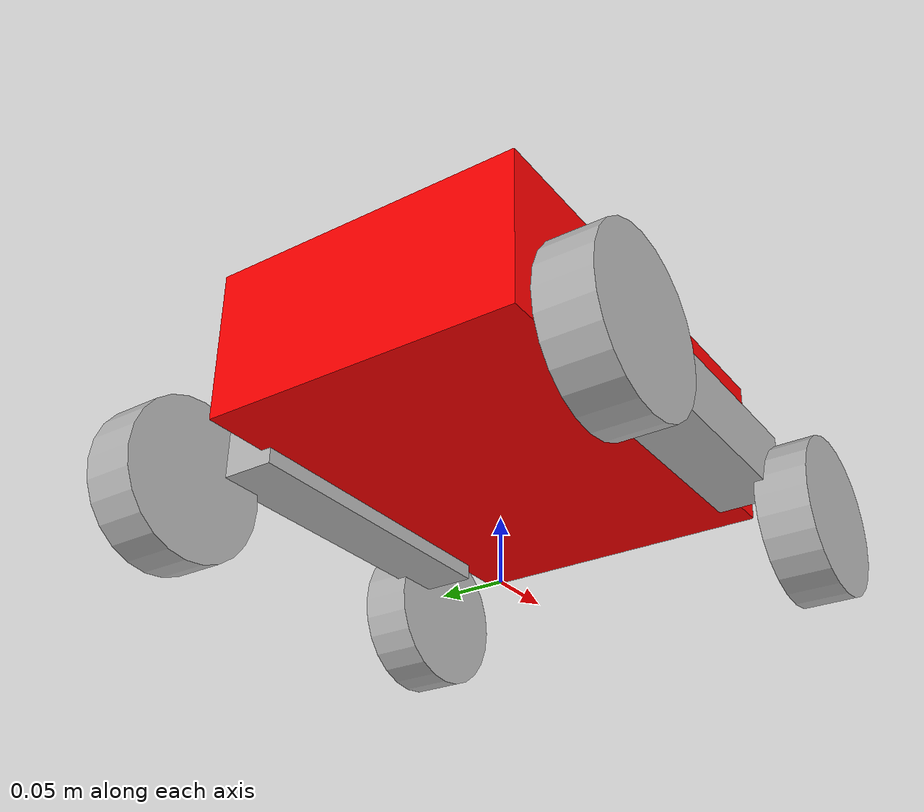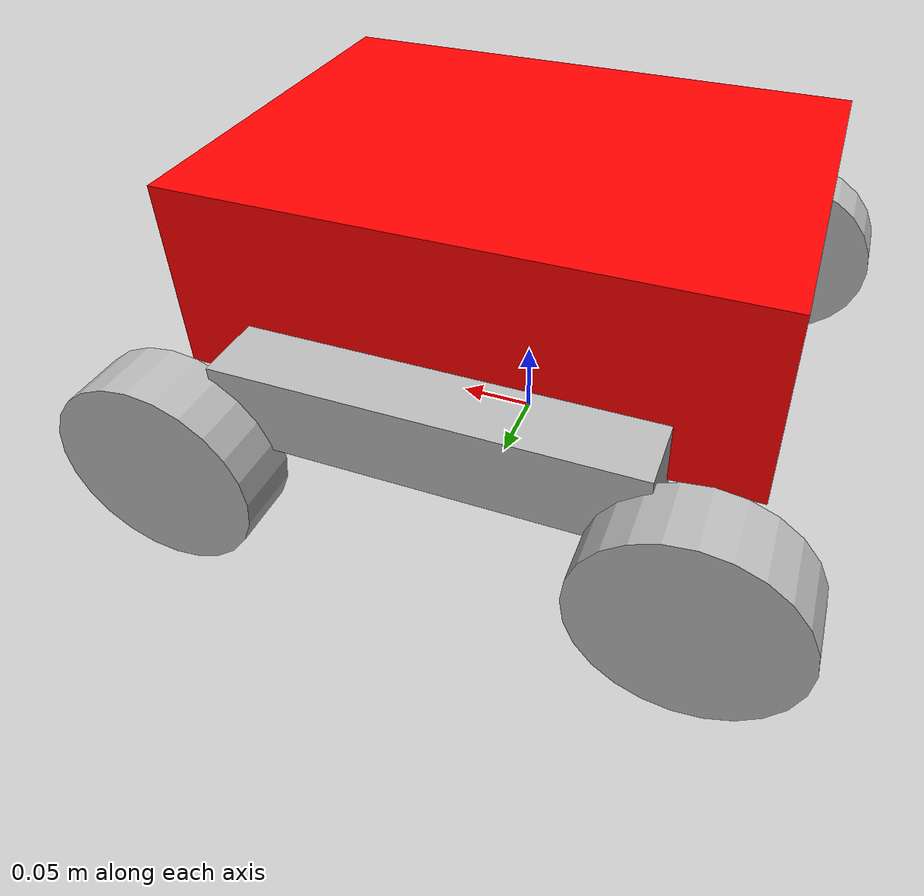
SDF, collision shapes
<sdf version='1.9'>
  <model name='leo_sim'>
    <link name='base_footprint'>
      <inertial>
        <pose>-0.01965072201211552 0.01167759118438614 0.1660702125213793 0 0 0</pose>
        <mass>1.5862309999999999</mass>
        <inertia>
          <ixx>0.01042630889712674</ixx>
          <ixy>0.001176207094533427</ixy>
          <ixz>-0.00088806760314957389</ixz>
          <iyy>0.01045413545998981</iyy>
          <iyz>0.00021963222424937429</iyz>
          <izz>0.018172704009346379</izz>
        </inertia>
      </inertial>
      <collision name='base_footprint_fixed_joint_lump__base_collision_collision'>
        <pose>0 0 0.14783 0 0 0</pose>
        <geometry>
          <box>
            <size>0.35 0.25 0.12</size>
          </box>
        </geometry>
      </collision>
      <visual name='base_footprint_fixed_joint_lump__base_link_visual'>
        <pose>0 0 0.19783 0 0 0</pose>
        <geometry>
          <mesh>
            <scale>1 1 1</scale>
            <uri>model://leo_description/models/Chassis.dae</uri>
          </mesh>
        </geometry>
        <material>
          <diffuse>1 0 0 1</diffuse>
          <ambient>1 0 0 1</ambient>
        </material>
      </visual>
      <visual name='base_footprint_fixed_joint_lump__antenna_link_visual_1'>
        <pose>-0.0052 0.056 0.19133 0 0 0</pose>
        <geometry>
          <mesh>
            <scale>1 1 1</scale>
            <uri>model://leo_description/models/Antenna.dae</uri>
          </mesh>
        </geometry>
      </visual>
      <visual name='base_footprint_fixed_joint_lump__realsense_link_visual_2'>
        <pose>0.1 0 0.22783 0 -0.3000000000000001 0</pose>
        <geometry>
          <mesh>
            <scale>1 1 1</scale>
            <uri>model://leo_description/models/d435.dae</uri>
          </mesh>
        </geometry>
      </visual>
      <sensor name='depth_camera' type='rgbd_camera'>
        <always_on>true</always_on>
        <update_rate>5</update_rate>
        <camera name='depth_camera'>
          <horizontal_fov>1.51844</horizontal_fov>
          <lens>
            <intrinsics>
              <fx>554.25468999999998</fx>
              <fy>554.25468999999998</fy>
              <cx>320.5</cx>
              <cy>240.5</cy>
              <s>0</s>
            </intrinsics>
            <type>stereographic</type>
            <scale_to_hfov>true</scale_to_hfov>
          </lens>
          <distortion>
            <k1>0</k1>
            <k2>0</k2>
            <k3>0</k3>
            <p1>0</p1>
            <p2>0</p2>
            <center>0.5 0.5</center>
          </distortion>
          <image>
            <width>64</width>
            <height>48</height>
            <format>R8G8B8</format>
          </image>
          <clip>
            <near>0.01</near>
            <far>300</far>
          </clip>
          <depth_camera>
            <clip>
              <near>0.10000000000000001</near>
              <far>10</far>
            </clip>
            <output>depths</output>
          </depth_camera>
          <noise>
            <type>gaussian</type>
            <mean>0</mean>
            <stddev>0.0070000000000000001</stddev>
          </noise>
        </camera>
        <topic>depth_camera</topic>
        <pose>0.1 0 0.22783 0 -0.3 0</pose>
      </sensor>
      <sensor name="robot_contact" type="contact">
    <always_on>true</always_on>
    <update_rate>50</update_rate>
    <contact>
      <collision>base_footprint_fixed_joint_lump__base_collision_collision</collision>
    </contact>
    <visualize>true</visualize>
    <topic>/robot_0/contact</topic> <!-- optional but helpful -->
  </sensor>
    </link>
    <joint name='rocker_L_joint' type='revolute'>
      <pose relative_to='base_footprint'>0.00263 0.14167 0.15052 0 0 3.141592653589793</pose>
      <parent>base_footprint</parent>
      <child>rocker_L_link</child>
      <axis>
        <xyz>0 1 0</xyz>
        <limit>
          <lower>-0.23999999999999999</lower>
          <upper>0.23999999999999999</upper>
          <effort>100</effort>
          <velocity>100</velocity>
        </limit>
        <dynamics>
          <damping>0.10000000000000001</damping>
          <friction>1</friction>
          <spring_reference>0</spring_reference>
          <spring_stiffness>0</spring_stiffness>
        </dynamics>
      </axis>
    </joint>
    <link name='rocker_L_link'>
      <pose relative_to='rocker_L_joint'>0 0 0 0 0 0</pose>
      <inertial>
        <pose>0 0.01346 -0.06506000000000001 0 0 0</pose>
        <mass>1.3873359999999999</mass>
        <inertia>
          <ixx>0.0029559999999999999</ixx>
          <ixy>-1.4893239999999999e-06</ixy>
          <ixz>-8.1034070000000002e-06</ixz>
          <iyy>0.029239999999999999</iyy>
          <iyz>7.1119999999999997e-05</iyz>
          <izz>0.028320000000000001</izz>
        </inertia>
      </inertial>
      <collision name='rocker_L_link_collision'>
        <pose>0 0 -0.05 0 0 0</pose>
        <geometry>
          <box>
            <size>0.25 0.05 0.05</size>
          </box>
        </geometry>
        <surface>
          <friction>
            <ode>
              <mu>0.29999999999999999</mu>
              <mu2>0.29999999999999999</mu2>
            </ode>
            <bullet>
              <friction>0.29999999999999999</friction>
              <friction2>0.29999999999999999</friction2>
              <rolling_friction>0.10000000000000001</rolling_friction>
            </bullet>
          </friction>
          <contact>
            <ode/>
          </contact>
        </surface>
      </collision>
      <visual name='rocker_L_link_visual'>
        <pose>0 0 0 0 0 0</pose>
        <geometry>
          <mesh>
            <scale>1 1 1</scale>
            <uri>model://leo_description/models/Rocker.dae</uri>
          </mesh>
        </geometry>
      </visual>
    </link>
    <joint name='wheel_FL_joint' type='revolute'>
      <pose relative_to='rocker_L_link'>-0.15256 -0.08214 -0.08802 0 0 0</pose>
      <parent>rocker_L_link</parent>
      <child>wheel_FL_link</child>
      <axis>
        <xyz>0 -1 0</xyz>
        <limit>
          <effort>2</effort>
          <velocity>6</velocity>
          <lower>-10000000000000000</lower>
          <upper>10000000000000000</upper>
        </limit>
        <dynamics>
          <damping>0.10000000000000001</damping>
          <friction>0.3125</friction>
          <spring_reference>0</spring_reference>
          <spring_stiffness>0</spring_stiffness>
        </dynamics>
      </axis>
    </joint>
    <link name='wheel_FL_link'>
      <pose relative_to='wheel_FL_joint'>0 0 0 0 0 0</pose>
      <inertial>
        <pose>0 0.030026 0 0 0 0</pose>
        <mass>0.28364200000000001</mass>
        <inertia>
          <ixx>0.00039100000000000002</ixx>
          <ixy>1.2396200000000001e-06</ixy>
          <ixz>5.5258200000000004e-07</ixz>
          <iyy>0.00047160000000000002</iyy>
          <iyz>-2.082042e-06</iyz>
          <izz>0.00039100000000000002</izz>
        </inertia>
      </inertial>
      <collision name='wheel_FL_link_collision'>
        <pose>0 0.04485 0 1.570796326794896 0 0</pose>
        <geometry>
          <cylinder>
            <length>0.040000000000000001</length>
            <radius>0.0625</radius>
          </cylinder>
        </geometry>
        <surface>
          <friction>
            <ode>
              <mu>1</mu>
              <mu2>1</mu2>
              <slip1>0.035000000000000003</slip1>
              <slip2>0</slip2>
              <fdir1>0 0 1</fdir1>
            </ode>
            <bullet>
              <friction>1</friction>
              <friction2>1</friction2>
              <rolling_friction>0.10000000000000001</rolling_friction>
            </bullet>
          </friction>
          <contact>
            <ode/>
          </contact>
        </surface>
      </collision>
      <visual name='wheel_FL_link_visual'>
        <pose>0 0 0 0 0 0</pose>
        <geometry>
          <mesh>
            <scale>1 1 1</scale>
            <uri>model://leo_description/models/WheelA.dae</uri>
          </mesh>
        </geometry>
      </visual>
    </link>
    <joint name='wheel_RL_joint' type='revolute'>
      <pose relative_to='rocker_L_link'>0.15256 -0.08214 -0.08802 0 0 0</pose>
      <parent>rocker_L_link</parent>
      <child>wheel_RL_link</child>
      <axis>
        <xyz>0 -1 0</xyz>
        <limit>
          <effort>2</effort>
          <velocity>6</velocity>
          <lower>-10000000000000000</lower>
          <upper>10000000000000000</upper>
        </limit>
        <dynamics>
          <damping>0.10000000000000001</damping>
          <friction>0.3125</friction>
          <spring_reference>0</spring_reference>
          <spring_stiffness>0</spring_stiffness>
        </dynamics>
      </axis>
    </joint>
    <link name='wheel_RL_link'>
      <pose relative_to='wheel_RL_joint'>0 0 0 0 0 0</pose>
      <inertial>
        <pose>0 0.030026 0 0 0 0</pose>
        <mass>0.28364200000000001</mass>
        <inertia>
          <ixx>0.00039100000000000002</ixx>
          <ixy>1.2396200000000001e-06</ixy>
          <ixz>5.5258200000000004e-07</ixz>
          <iyy>0.00047160000000000002</iyy>
          <iyz>-2.082042e-06</iyz>
          <izz>0.00039100000000000002</izz>
        </inertia>
      </inertial>
      <collision name='wheel_RL_link_collision'>
        <pose>0 0.04485 0 1.570796326794896 0 0</pose>
        <geometry>
          <cylinder>
            <length>0.040000000000000001</length>
            <radius>0.0625</radius>
          </cylinder>
        </geometry>
        <surface>
          <friction>
            <ode>
              <mu>1</mu>
              <mu2>1</mu2>
              <slip1>0.035000000000000003</slip1>
              <slip2>0</slip2>
              <fdir1>0 0 1</fdir1>
            </ode>
            <bullet>
              <friction>1</friction>
              <friction2>1</friction2>
              <rolling_friction>0.10000000000000001</rolling_friction>
            </bullet>
          </friction>
          <contact>
            <ode/>
          </contact>
        </surface>
      </collision>
      <visual name='wheel_RL_link_visual'>
        <pose>0 0 0 0 0 0</pose>
        <geometry>
          <mesh>
            <scale>1 1 1</scale>
            <uri>model://leo_description/models/WheelA.dae</uri>
          </mesh>
        </geometry>
      </visual>
    </link>
    <joint name='rocker_R_joint' type='revolute'>
      <pose relative_to='base_footprint'>0.00263 -0.14167 0.15052 0 0 0</pose>
      <parent>base_footprint</parent>
      <child>rocker_R_link</child>
      <axis>
        <xyz>0 1 0</xyz>
        <limit>
          <lower>-0.23999999999999999</lower>
          <upper>0.23999999999999999</upper>
          <effort>100</effort>
          <velocity>100</velocity>
        </limit>
        <dynamics>
          <damping>0.10000000000000001</damping>
          <friction>1</friction>
          <spring_reference>0</spring_reference>
          <spring_stiffness>0</spring_stiffness>
        </dynamics>
      </axis>
    </joint>
    <link name='rocker_R_link'>
      <pose relative_to='rocker_R_joint'>0 0 0 0 0 0</pose>
      <inertial>
        <pose>0 0.01346 -0.06506000000000001 0 0 0</pose>
        <mass>1.3873359999999999</mass>
        <inertia>
          <ixx>0.0029559999999999999</ixx>
          <ixy>-1.4893239999999999e-06</ixy>
          <ixz>-8.1034070000000002e-06</ixz>
          <iyy>0.029239999999999999</iyy>
          <iyz>7.1119999999999997e-05</iyz>
          <izz>0.028320000000000001</izz>
        </inertia>
      </inertial>
      <collision name='rocker_R_link_collision'>
        <pose>0 0 -0.05 0 0 0</pose>
        <geometry>
          <box>
            <size>0.25 0.05 0.05</size>
          </box>
        </geometry>
        <surface>
          <friction>
            <ode>
              <mu>0.29999999999999999</mu>
              <mu2>0.29999999999999999</mu2>
            </ode>
            <bullet>
              <friction>0.29999999999999999</friction>
              <friction2>0.29999999999999999</friction2>
              <rolling_friction>0.10000000000000001</rolling_friction>
            </bullet>
          </friction>
          <contact>
            <ode/>
          </contact>
        </surface>
      </collision>
      <visual name='rocker_R_link_visual'>
        <pose>0 0 0 0 0 0</pose>
        <geometry>
          <mesh>
            <scale>1 1 1</scale>
            <uri>model://leo_description/models/Rocker.dae</uri>
          </mesh>
        </geometry>
      </visual>
    </link>
    <joint name='wheel_FR_joint' type='revolute'>
      <pose relative_to='rocker_R_link'>0.15256 -0.08214 -0.08802 0 0 0</pose>
      <parent>rocker_R_link</parent>
      <child>wheel_FR_link</child>
      <axis>
        <xyz>0 1 0</xyz>
        <limit>
          <effort>2</effort>
          <velocity>6</velocity>
          <lower>-10000000000000000</lower>
          <upper>10000000000000000</upper>
        </limit>
        <dynamics>
          <damping>0.10000000000000001</damping>
          <friction>0.3125</friction>
          <spring_reference>0</spring_reference>
          <spring_stiffness>0</spring_stiffness>
        </dynamics>
      </axis>
    </joint>
    <link name='wheel_FR_link'>
      <pose relative_to='wheel_FR_joint'>0 0 0 0 0 0</pose>
      <inertial>
        <pose>0 0.030026 0 0 0 0</pose>
        <mass>0.28364200000000001</mass>
        <inertia>
          <ixx>0.00039100000000000002</ixx>
          <ixy>1.2396200000000001e-06</ixy>
          <ixz>5.5258200000000004e-07</ixz>
          <iyy>0.00047160000000000002</iyy>
          <iyz>-2.082042e-06</iyz>
          <izz>0.00039100000000000002</izz>
        </inertia>
      </inertial>
      <collision name='wheel_FR_link_collision'>
        <pose>0 0.04485 0 1.570796326794896 0 0</pose>
        <geometry>
          <cylinder>
            <length>0.040000000000000001</length>
            <radius>0.0625</radius>
          </cylinder>
        </geometry>
        <surface>
          <friction>
            <ode>
              <mu>1</mu>
              <mu2>1</mu2>
              <slip1>0.035000000000000003</slip1>
              <slip2>0</slip2>
              <fdir1>0 0 1</fdir1>
            </ode>
            <bullet>
              <friction>1</friction>
              <friction2>1</friction2>
              <rolling_friction>0.10000000000000001</rolling_friction>
            </bullet>
          </friction>
          <contact>
            <ode/>
          </contact>
        </surface>
      </collision>
      <visual name='wheel_FR_link_visual'>
        <pose>0 0 0 0 0 0</pose>
        <geometry>
          <mesh>
            <scale>1 1 1</scale>
            <uri>model://leo_description/models/WheelB.dae</uri>
          </mesh>
        </geometry>
      </visual>
    </link>
    <joint name='wheel_RR_joint' type='revolute'>
      <pose relative_to='rocker_R_link'>-0.15256 -0.08214 -0.08802 0 0 0</pose>
      <parent>rocker_R_link</parent>
      <child>wheel_RR_link</child>
      <axis>
        <xyz>0 1 0</xyz>
        <limit>
          <effort>2</effort>
          <velocity>6</velocity>
          <lower>-10000000000000000</lower>
          <upper>10000000000000000</upper>
        </limit>
        <dynamics>
          <damping>0.10000000000000001</damping>
          <friction>0.3125</friction>
          <spring_reference>0</spring_reference>
          <spring_stiffness>0</spring_stiffness>
        </dynamics>
      </axis>
    </joint>
    <link name='wheel_RR_link'>
      <pose relative_to='wheel_RR_joint'>0 0 0 0 0 0</pose>
      <inertial>
        <pose>0 0.030026 0 0 0 0</pose>
        <mass>0.28364200000000001</mass>
        <inertia>
          <ixx>0.00039100000000000002</ixx>
          <ixy>1.2396200000000001e-06</ixy>
          <ixz>5.5258200000000004e-07</ixz>
          <iyy>0.00047160000000000002</iyy>
          <iyz>-2.082042e-06</iyz>
          <izz>0.00039100000000000002</izz>
        </inertia>
      </inertial>
      <collision name='wheel_RR_link_collision'>
        <pose>0 0.04485 0 1.570796326794896 0 0</pose>
        <geometry>
          <cylinder>
            <length>0.040000000000000001</length>
            <radius>0.0625</radius>
          </cylinder>
        </geometry>
        <surface>
          <friction>
            <ode>
              <mu>1</mu>
              <mu2>1</mu2>
              <slip1>0.035000000000000003</slip1>
              <slip2>0</slip2>
              <fdir1>0 0 1</fdir1>
            </ode>
            <bullet>
              <friction>1</friction>
              <friction2>1</friction2>
              <rolling_friction>0.10000000000000001</rolling_friction>
            </bullet>
          </friction>
          <contact>
            <ode/>
          </contact>
        </surface>
      </collision>
      <visual name='wheel_RR_link_visual'>
        <pose>0 0 0 0 0 0</pose>
        <geometry>
          <mesh>
            <scale>1 1 1</scale>
            <uri>model://leo_description/models/WheelB.dae</uri>
          </mesh>
        </geometry>
      </visual>
    </link>
    <plugin name='leo_gz::DifferentialSystem' filename='libleo_gz_differential_plugin.so'>
      <jointA>rocker_L_joint</jointA>
      <jointB>rocker_R_joint</jointB>
      <forceConstant>100.0</forceConstant>
    </plugin>
    <plugin name='gz::sim::systems::JointStatePublisher' filename='libignition-gazebo-joint-state-publisher-system.so'>
      <topic>joint_states</topic>
    </plugin>
    <plugin name='gz::sim::systems::DiffDrive' filename='libgz-sim-diff-drive-system.so'>
      <left_joint>wheel_FL_joint</left_joint>
      <right_joint>wheel_FR_joint</right_joint>
      <left_joint>wheel_RL_joint</left_joint>
      <right_joint>wheel_RR_joint</right_joint>
      <wheel_separation>0.358</wheel_separation>
      <wheel_radius>0.0625</wheel_radius>
      <frame_id>odom</frame_id>
      <child_frame_id>base_footprint</child_frame_id>
      <odom_publish_frequency>20</odom_publish_frequency>
      <topic>cmd_vel</topic>
      <odom_topic>odom</odom_topic>
      <tf_topic>tf</tf_topic>
      <max_linear_acceleration>2.5</max_linear_acceleration>
      <max_angular_acceleration>3</max_angular_acceleration>
      <min_linear_acceleration>-2.5</min_linear_acceleration>
      <min_angular_acceleration>-3</min_angular_acceleration>
    </plugin>
    <frame name='antenna_joint' attached_to='base_link'>
      <pose>-0.0052 0.056 -0.0065 0 -0 0</pose>
    </frame>
    <frame name='antenna_link' attached_to='antenna_joint'/>
    <frame name='realsense_joint' attached_to='base_link'>
      <pose>0.1 0 0.03 0 -0.3 0</pose>
    </frame>
    <frame name='realsense_link' attached_to='realsense_joint'/>
    <frame name='base_joint' attached_to='base_footprint'>
      <pose>0 0 0.19783 0 -0 0</pose>
    </frame>
    <frame name='base_link' attached_to='base_joint'/>
  </model>
</sdf>
